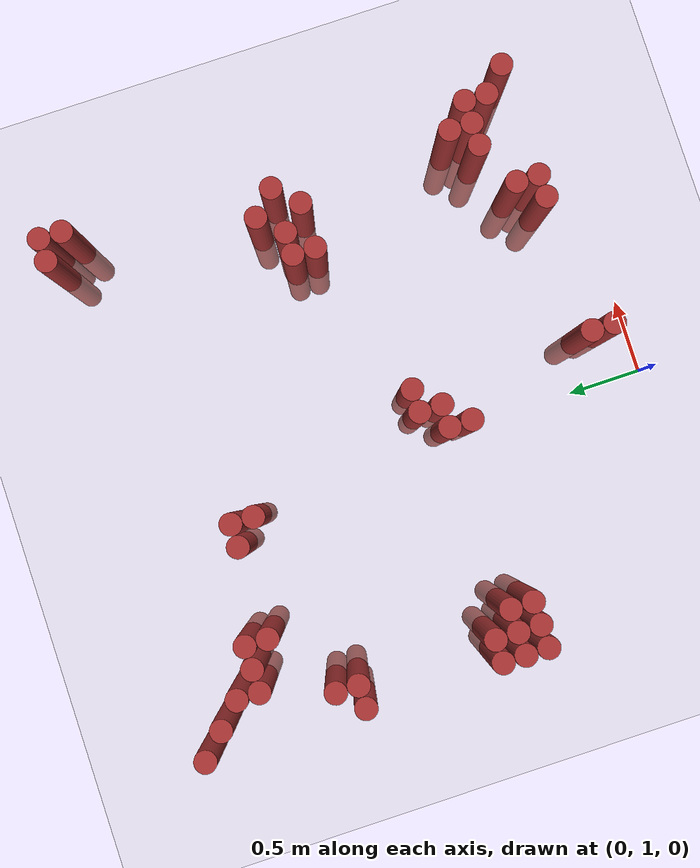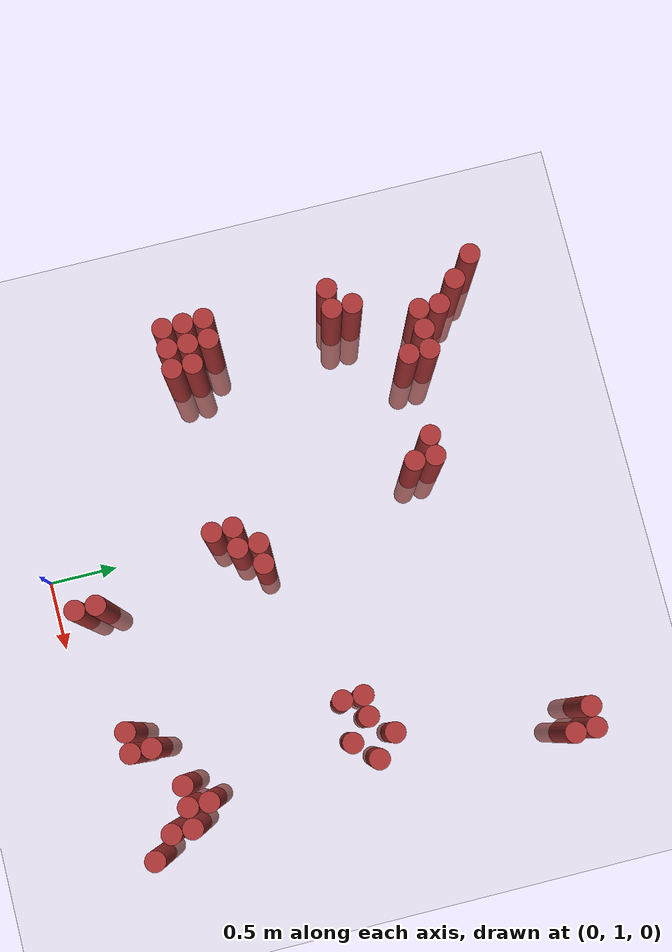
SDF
<sdf version="1.6">
 <world name="default">
  <model name="ground_plane">
   <static>1</static>
   <link name="link">
    <collision name="collision">
     <geometry><plane><normal>0 0 1</normal><size>100 100</size></plane></geometry>
     <surface><friction><ode><mu>100</mu><mu2>50</mu2></ode></friction></surface>
    </collision>
    <visual name="visual">
     <cast_shadows>0</cast_shadows>
     <geometry><plane><normal>0 0 1</normal><size>100 100</size></plane></geometry>
     <material>
      <script><uri>file://media/materials/scripts/gazebo.material</uri><name>Gazebo/Grey</name></script>
     </material>
    </visual>
   </link>
  </model>
  <model name="unit_cylinder_159">
   <static>1</static>
   <pose>-1.475000 2.275000 0.000000 0.000000 0.000000 0.000000</pose>
   <link name="link">
    <inertial>
     <mass>1</mass>
     <inertia><ixx>0.145833</ixx><ixy>0</ixy><ixz>0</ixz><iyy>0.145833</iyy><iyz>0</iyz><izz>0.125</izz></inertia>
    </inertial>
    <collision name="collision">
     <geometry><cylinder><radius>0.075000</radius><length>1.5</length></cylinder></geometry>
    </collision>
    <visual name="visual">
     <geometry><cylinder><radius>0.075000</radius><length>1.5</length></cylinder></geometry>
     <material>
      <ambient>0.648000 0.192000 0.192000 1</ambient>
      <diffuse>0.648000 0.192000 0.192000 1</diffuse>
     </material>
     <material>
      <script><name>Gazebo/Grey</name><uri>file://media/materials/scripts/gazebo.material</uri></script>
     </material>
    </visual>
   </link>
  </model>
  <model name="unit_cylinder_160">
   <static>1</static>
   <pose>-1.475000 2.425000 0.000000 0.000000 0.000000 0.000000</pose>
   <link name="link">
    <inertial>
     <mass>1</mass>
     <inertia><ixx>0.145833</ixx><ixy>0</ixy><ixz>0</ixz><iyy>0.145833</iyy><iyz>0</iyz><izz>0.125</izz></inertia>
    </inertial>
    <collision name="collision">
     <geometry><cylinder><radius>0.075000</radius><length>1.5</length></cylinder></geometry>
    </collision>
    <visual name="visual">
     <geometry><cylinder><radius>0.075000</radius><length>1.5</length></cylinder></geometry>
     <material>
      <ambient>0.648000 0.192000 0.192000 1</ambient>
      <diffuse>0.648000 0.192000 0.192000 1</diffuse>
     </material>
     <material>
      <script><name>Gazebo/Grey</name><uri>file://media/materials/scripts/gazebo.material</uri></script>
     </material>
    </visual>
   </link>
  </model>
  <model name="unit_cylinder_161">
   <static>1</static>
   <pose>-1.475000 2.575000 0.000000 0.000000 0.000000 0.000000</pose>
   <link name="link">
    <inertial>
     <mass>1</mass>
     <inertia><ixx>0.145833</ixx><ixy>0</ixy><ixz>0</ixz><iyy>0.145833</iyy><iyz>0</iyz><izz>0.125</izz></inertia>
    </inertial>
    <collision name="collision">
     <geometry><cylinder><radius>0.075000</radius><length>1.5</length></cylinder></geometry>
    </collision>
    <visual name="visual">
     <geometry><cylinder><radius>0.075000</radius><length>1.5</length></cylinder></geometry>
     <material>
      <ambient>0.648000 0.192000 0.192000 1</ambient>
      <diffuse>0.648000 0.192000 0.192000 1</diffuse>
     </material>
     <material>
      <script><name>Gazebo/Grey</name><uri>file://media/materials/scripts/gazebo.material</uri></script>
     </material>
    </visual>
   </link>
  </model>
  <model name="unit_cylinder_162">
   <static>1</static>
   <pose>-1.475000 3.475000 0.000000 0.000000 0.000000 0.000000</pose>
   <link name="link">
    <inertial>
     <mass>1</mass>
     <inertia><ixx>0.145833</ixx><ixy>0</ixy><ixz>0</ixz><iyy>0.145833</iyy><iyz>0</iyz><izz>0.125</izz></inertia>
    </inertial>
    <collision name="collision">
     <geometry><cylinder><radius>0.075000</radius><length>1.5</length></cylinder></geometry>
    </collision>
    <visual name="visual">
     <geometry><cylinder><radius>0.075000</radius><length>1.5</length></cylinder></geometry>
     <material>
      <ambient>0.648000 0.192000 0.192000 1</ambient>
      <diffuse>0.648000 0.192000 0.192000 1</diffuse>
     </material>
     <material>
      <script><name>Gazebo/Grey</name><uri>file://media/materials/scripts/gazebo.material</uri></script>
     </material>
    </visual>
   </link>
  </model>
  <model name="unit_cylinder_163">
   <static>1</static>
   <pose>-1.475000 4.525000 0.000000 0.000000 0.000000 0.000000</pose>
   <link name="link">
    <inertial>
     <mass>1</mass>
     <inertia><ixx>0.145833</ixx><ixy>0</ixy><ixz>0</ixz><iyy>0.145833</iyy><iyz>0</iyz><izz>0.125</izz></inertia>
    </inertial>
    <collision name="collision">
     <geometry><cylinder><radius>0.075000</radius><length>1.5</length></cylinder></geometry>
    </collision>
    <visual name="visual">
     <geometry><cylinder><radius>0.075000</radius><length>1.5</length></cylinder></geometry>
     <material>
      <ambient>0.648000 0.192000 0.192000 1</ambient>
      <diffuse>0.648000 0.192000 0.192000 1</diffuse>
     </material>
     <material>
      <script><name>Gazebo/Grey</name><uri>file://media/materials/scripts/gazebo.material</uri></script>
     </material>
    </visual>
   </link>
  </model>
  <model name="unit_cylinder_166">
   <static>1</static>
   <pose>-1.325000 2.275000 0.000000 0.000000 0.000000 0.000000</pose>
   <link name="link">
    <inertial>
     <mass>1</mass>
     <inertia><ixx>0.145833</ixx><ixy>0</ixy><ixz>0</ixz><iyy>0.145833</iyy><iyz>0</iyz><izz>0.125</izz></inertia>
    </inertial>
    <collision name="collision">
     <geometry><cylinder><radius>0.075000</radius><length>1.5</length></cylinder></geometry>
    </collision>
    <visual name="visual">
     <geometry><cylinder><radius>0.075000</radius><length>1.5</length></cylinder></geometry>
     <material>
      <ambient>0.648000 0.192000 0.192000 1</ambient>
      <diffuse>0.648000 0.192000 0.192000 1</diffuse>
     </material>
     <material>
      <script><name>Gazebo/Grey</name><uri>file://media/materials/scripts/gazebo.material</uri></script>
     </material>
    </visual>
   </link>
  </model>
  <model name="unit_cylinder_167">
   <static>1</static>
   <pose>-1.325000 2.425000 0.000000 0.000000 0.000000 0.000000</pose>
   <link name="link">
    <inertial>
     <mass>1</mass>
     <inertia><ixx>0.145833</ixx><ixy>0</ixy><ixz>0</ixz><iyy>0.145833</iyy><iyz>0</iyz><izz>0.125</izz></inertia>
    </inertial>
    <collision name="collision">
     <geometry><cylinder><radius>0.075000</radius><length>1.5</length></cylinder></geometry>
    </collision>
    <visual name="visual">
     <geometry><cylinder><radius>0.075000</radius><length>1.5</length></cylinder></geometry>
     <material>
      <ambient>0.648000 0.192000 0.192000 1</ambient>
      <diffuse>0.648000 0.192000 0.192000 1</diffuse>
     </material>
     <material>
      <script><name>Gazebo/Grey</name><uri>file://media/materials/scripts/gazebo.material</uri></script>
     </material>
    </visual>
   </link>
  </model>
  <model name="unit_cylinder_168">
   <static>1</static>
   <pose>-1.325000 2.575000 0.000000 0.000000 0.000000 0.000000</pose>
   <link name="link">
    <inertial>
     <mass>1</mass>
     <inertia><ixx>0.145833</ixx><ixy>0</ixy><ixz>0</ixz><iyy>0.145833</iyy><iyz>0</iyz><izz>0.125</izz></inertia>
    </inertial>
    <collision name="collision">
     <geometry><cylinder><radius>0.075000</radius><length>1.5</length></cylinder></geometry>
    </collision>
    <visual name="visual">
     <geometry><cylinder><radius>0.075000</radius><length>1.5</length></cylinder></geometry>
     <material>
      <ambient>0.648000 0.192000 0.192000 1</ambient>
      <diffuse>0.648000 0.192000 0.192000 1</diffuse>
     </material>
     <material>
      <script><name>Gazebo/Grey</name><uri>file://media/materials/scripts/gazebo.material</uri></script>
     </material>
    </visual>
   </link>
  </model>
  <model name="unit_cylinder_169">
   <static>1</static>
   <pose>-1.325000 3.475000 0.000000 0.000000 0.000000 0.000000</pose>
   <link name="link">
    <inertial>
     <mass>1</mass>
     <inertia><ixx>0.145833</ixx><ixy>0</ixy><ixz>0</ixz><iyy>0.145833</iyy><iyz>0</iyz><izz>0.125</izz></inertia>
    </inertial>
    <collision name="collision">
     <geometry><cylinder><radius>0.075000</radius><length>1.5</length></cylinder></geometry>
    </collision>
    <visual name="visual">
     <geometry><cylinder><radius>0.075000</radius><length>1.5</length></cylinder></geometry>
     <material>
      <ambient>0.648000 0.192000 0.192000 1</ambient>
      <diffuse>0.648000 0.192000 0.192000 1</diffuse>
     </material>
     <material>
      <script><name>Gazebo/Grey</name><uri>file://media/materials/scripts/gazebo.material</uri></script>
     </material>
    </visual>
   </link>
  </model>
  <model name="unit_cylinder_170">
   <static>1</static>
   <pose>-1.325000 3.625000 0.000000 0.000000 0.000000 0.000000</pose>
   <link name="link">
    <inertial>
     <mass>1</mass>
     <inertia><ixx>0.145833</ixx><ixy>0</ixy><ixz>0</ixz><iyy>0.145833</iyy><iyz>0</iyz><izz>0.125</izz></inertia>
    </inertial>
    <collision name="collision">
     <geometry><cylinder><radius>0.075000</radius><length>1.5</length></cylinder></geometry>
    </collision>
    <visual name="visual">
     <geometry><cylinder><radius>0.075000</radius><length>1.5</length></cylinder></geometry>
     <material>
      <ambient>0.648000 0.192000 0.192000 1</ambient>
      <diffuse>0.648000 0.192000 0.192000 1</diffuse>
     </material>
     <material>
      <script><name>Gazebo/Grey</name><uri>file://media/materials/scripts/gazebo.material</uri></script>
     </material>
    </visual>
   </link>
  </model>
  <model name="unit_cylinder_171">
   <static>1</static>
   <pose>-1.325000 4.375000 0.000000 0.000000 0.000000 0.000000</pose>
   <link name="link">
    <inertial>
     <mass>1</mass>
     <inertia><ixx>0.145833</ixx><ixy>0</ixy><ixz>0</ixz><iyy>0.145833</iyy><iyz>0</iyz><izz>0.125</izz></inertia>
    </inertial>
    <collision name="collision">
     <geometry><cylinder><radius>0.075000</radius><length>1.5</length></cylinder></geometry>
    </collision>
    <visual name="visual">
     <geometry><cylinder><radius>0.075000</radius><length>1.5</length></cylinder></geometry>
     <material>
      <ambient>0.648000 0.192000 0.192000 1</ambient>
      <diffuse>0.648000 0.192000 0.192000 1</diffuse>
     </material>
     <material>
      <script><name>Gazebo/Grey</name><uri>file://media/materials/scripts/gazebo.material</uri></script>
     </material>
    </visual>
   </link>
  </model>
  <model name="unit_cylinder_174">
   <static>1</static>
   <pose>-1.175000 2.275000 0.000000 0.000000 0.000000 0.000000</pose>
   <link name="link">
    <inertial>
     <mass>1</mass>
     <inertia><ixx>0.145833</ixx><ixy>0</ixy><ixz>0</ixz><iyy>0.145833</iyy><iyz>0</iyz><izz>0.125</izz></inertia>
    </inertial>
    <collision name="collision">
     <geometry><cylinder><radius>0.075000</radius><length>1.5</length></cylinder></geometry>
    </collision>
    <visual name="visual">
     <geometry><cylinder><radius>0.075000</radius><length>1.5</length></cylinder></geometry>
     <material>
      <ambient>0.648000 0.192000 0.192000 1</ambient>
      <diffuse>0.648000 0.192000 0.192000 1</diffuse>
     </material>
     <material>
      <script><name>Gazebo/Grey</name><uri>file://media/materials/scripts/gazebo.material</uri></script>
     </material>
    </visual>
   </link>
  </model>
  <model name="unit_cylinder_175">
   <static>1</static>
   <pose>-1.175000 2.425000 0.000000 0.000000 0.000000 0.000000</pose>
   <link name="link">
    <inertial>
     <mass>1</mass>
     <inertia><ixx>0.145833</ixx><ixy>0</ixy><ixz>0</ixz><iyy>0.145833</iyy><iyz>0</iyz><izz>0.125</izz></inertia>
    </inertial>
    <collision name="collision">
     <geometry><cylinder><radius>0.075000</radius><length>1.5</length></cylinder></geometry>
    </collision>
    <visual name="visual">
     <geometry><cylinder><radius>0.075000</radius><length>1.5</length></cylinder></geometry>
     <material>
      <ambient>0.648000 0.192000 0.192000 1</ambient>
      <diffuse>0.648000 0.192000 0.192000 1</diffuse>
     </material>
     <material>
      <script><name>Gazebo/Grey</name><uri>file://media/materials/scripts/gazebo.material</uri></script>
     </material>
    </visual>
   </link>
  </model>
  <model name="unit_cylinder_176">
   <static>1</static>
   <pose>-1.175000 4.075000 0.000000 0.000000 0.000000 0.000000</pose>
   <link name="link">
    <inertial>
     <mass>1</mass>
     <inertia><ixx>0.145833</ixx><ixy>0</ixy><ixz>0</ixz><iyy>0.145833</iyy><iyz>0</iyz><izz>0.125</izz></inertia>
    </inertial>
    <collision name="collision">
     <geometry><cylinder><radius>0.075000</radius><length>1.5</length></cylinder></geometry>
    </collision>
    <visual name="visual">
     <geometry><cylinder><radius>0.075000</radius><length>1.5</length></cylinder></geometry>
     <material>
      <ambient>0.648000 0.192000 0.192000 1</ambient>
      <diffuse>0.648000 0.192000 0.192000 1</diffuse>
     </material>
     <material>
      <script><name>Gazebo/Grey</name><uri>file://media/materials/scripts/gazebo.material</uri></script>
     </material>
    </visual>
   </link>
  </model>
  <model name="unit_cylinder_177">
   <static>1</static>
   <pose>-1.175000 4.225000 0.000000 0.000000 0.000000 0.000000</pose>
   <link name="link">
    <inertial>
     <mass>1</mass>
     <inertia><ixx>0.145833</ixx><ixy>0</ixy><ixz>0</ixz><iyy>0.145833</iyy><iyz>0</iyz><izz>0.125</izz></inertia>
    </inertial>
    <collision name="collision">
     <geometry><cylinder><radius>0.075000</radius><length>1.5</length></cylinder></geometry>
    </collision>
    <visual name="visual">
     <geometry><cylinder><radius>0.075000</radius><length>1.5</length></cylinder></geometry>
     <material>
      <ambient>0.648000 0.192000 0.192000 1</ambient>
      <diffuse>0.648000 0.192000 0.192000 1</diffuse>
     </material>
     <material>
      <script><name>Gazebo/Grey</name><uri>file://media/materials/scripts/gazebo.material</uri></script>
     </material>
    </visual>
   </link>
  </model>
  <model name="unit_cylinder_178">
   <static>1</static>
   <pose>-1.025000 4.075000 0.000000 0.000000 0.000000 0.000000</pose>
   <link name="link">
    <inertial>
     <mass>1</mass>
     <inertia><ixx>0.145833</ixx><ixy>0</ixy><ixz>0</ixz><iyy>0.145833</iyy><iyz>0</iyz><izz>0.125</izz></inertia>
    </inertial>
    <collision name="collision">
     <geometry><cylinder><radius>0.075000</radius><length>1.5</length></cylinder></geometry>
    </collision>
    <visual name="visual">
     <geometry><cylinder><radius>0.075000</radius><length>1.5</length></cylinder></geometry>
     <material>
      <ambient>0.648000 0.192000 0.192000 1</ambient>
      <diffuse>0.648000 0.192000 0.192000 1</diffuse>
     </material>
     <material>
      <script><name>Gazebo/Grey</name><uri>file://media/materials/scripts/gazebo.material</uri></script>
     </material>
    </visual>
   </link>
  </model>
  <model name="unit_cylinder_179">
   <static>1</static>
   <pose>-0.875000 3.925000 0.000000 0.000000 0.000000 0.000000</pose>
   <link name="link">
    <inertial>
     <mass>1</mass>
     <inertia><ixx>0.145833</ixx><ixy>0</ixy><ixz>0</ixz><iyy>0.145833</iyy><iyz>0</iyz><izz>0.125</izz></inertia>
    </inertial>
    <collision name="collision">
     <geometry><cylinder><radius>0.075000</radius><length>1.5</length></cylinder></geometry>
    </collision>
    <visual name="visual">
     <geometry><cylinder><radius>0.075000</radius><length>1.5</length></cylinder></geometry>
     <material>
      <ambient>0.648000 0.192000 0.192000 1</ambient>
      <diffuse>0.648000 0.192000 0.192000 1</diffuse>
     </material>
     <material>
      <script><name>Gazebo/Grey</name><uri>file://media/materials/scripts/gazebo.material</uri></script>
     </material>
    </visual>
   </link>
  </model>
  <model name="unit_cylinder_180">
   <static>1</static>
   <pose>-0.875000 4.075000 0.000000 0.000000 0.000000 0.000000</pose>
   <link name="link">
    <inertial>
     <mass>1</mass>
     <inertia><ixx>0.145833</ixx><ixy>0</ixy><ixz>0</ixz><iyy>0.145833</iyy><iyz>0</iyz><izz>0.125</izz></inertia>
    </inertial>
    <collision name="collision">
     <geometry><cylinder><radius>0.075000</radius><length>1.5</length></cylinder></geometry>
    </collision>
    <visual name="visual">
     <geometry><cylinder><radius>0.075000</radius><length>1.5</length></cylinder></geometry>
     <material>
      <ambient>0.648000 0.192000 0.192000 1</ambient>
      <diffuse>0.648000 0.192000 0.192000 1</diffuse>
     </material>
     <material>
      <script><name>Gazebo/Grey</name><uri>file://media/materials/scripts/gazebo.material</uri></script>
     </material>
    </visual>
   </link>
  </model>
  <model name="unit_cylinder_181">
   <static>1</static>
   <pose>-0.275000 3.925000 0.000000 0.000000 0.000000 0.000000</pose>
   <link name="link">
    <inertial>
     <mass>1</mass>
     <inertia><ixx>0.145833</ixx><ixy>0</ixy><ixz>0</ixz><iyy>0.145833</iyy><iyz>0</iyz><izz>0.125</izz></inertia>
    </inertial>
    <collision name="collision">
     <geometry><cylinder><radius>0.075000</radius><length>1.5</length></cylinder></geometry>
    </collision>
    <visual name="visual">
     <geometry><cylinder><radius>0.075000</radius><length>1.5</length></cylinder></geometry>
     <material>
      <ambient>0.648000 0.192000 0.192000 1</ambient>
      <diffuse>0.648000 0.192000 0.192000 1</diffuse>
     </material>
     <material>
      <script><name>Gazebo/Grey</name><uri>file://media/materials/scripts/gazebo.material</uri></script>
     </material>
    </visual>
   </link>
  </model>
  <model name="unit_cylinder_182">
   <static>1</static>
   <pose>-0.125000 3.775000 0.000000 0.000000 0.000000 0.000000</pose>
   <link name="link">
    <inertial>
     <mass>1</mass>
     <inertia><ixx>0.145833</ixx><ixy>0</ixy><ixz>0</ixz><iyy>0.145833</iyy><iyz>0</iyz><izz>0.125</izz></inertia>
    </inertial>
    <collision name="collision">
     <geometry><cylinder><radius>0.075000</radius><length>1.5</length></cylinder></geometry>
    </collision>
    <visual name="visual">
     <geometry><cylinder><radius>0.075000</radius><length>1.5</length></cylinder></geometry>
     <material>
      <ambient>0.648000 0.192000 0.192000 1</ambient>
      <diffuse>0.648000 0.192000 0.192000 1</diffuse>
     </material>
     <material>
      <script><name>Gazebo/Grey</name><uri>file://media/materials/scripts/gazebo.material</uri></script>
     </material>
    </visual>
   </link>
  </model>
  <model name="unit_cylinder_183">
   <static>1</static>
   <pose>-0.125000 3.925000 0.000000 0.000000 0.000000 0.000000</pose>
   <link name="link">
    <inertial>
     <mass>1</mass>
     <inertia><ixx>0.145833</ixx><ixy>0</ixy><ixz>0</ixz><iyy>0.145833</iyy><iyz>0</iyz><izz>0.125</izz></inertia>
    </inertial>
    <collision name="collision">
     <geometry><cylinder><radius>0.075000</radius><length>1.5</length></cylinder></geometry>
    </collision>
    <visual name="visual">
     <geometry><cylinder><radius>0.075000</radius><length>1.5</length></cylinder></geometry>
     <material>
      <ambient>0.648000 0.192000 0.192000 1</ambient>
      <diffuse>0.648000 0.192000 0.192000 1</diffuse>
     </material>
     <material>
      <script><name>Gazebo/Grey</name><uri>file://media/materials/scripts/gazebo.material</uri></script>
     </material>
    </visual>
   </link>
  </model>
  <model name="unit_cylinder_185">
   <static>1</static>
   <pose>0.025000 2.275000 0.000000 0.000000 0.000000 0.000000</pose>
   <link name="link">
    <inertial>
     <mass>1</mass>
     <inertia><ixx>0.145833</ixx><ixy>0</ixy><ixz>0</ixz><iyy>0.145833</iyy><iyz>0</iyz><izz>0.125</izz></inertia>
    </inertial>
    <collision name="collision">
     <geometry><cylinder><radius>0.075000</radius><length>1.5</length></cylinder></geometry>
    </collision>
    <visual name="visual">
     <geometry><cylinder><radius>0.075000</radius><length>1.5</length></cylinder></geometry>
     <material>
      <ambient>0.648000 0.192000 0.192000 1</ambient>
      <diffuse>0.648000 0.192000 0.192000 1</diffuse>
     </material>
     <material>
      <script><name>Gazebo/Grey</name><uri>file://media/materials/scripts/gazebo.material</uri></script>
     </material>
    </visual>
   </link>
  </model>
  <model name="unit_cylinder_186">
   <static>1</static>
   <pose>0.025000 2.425000 0.000000 0.000000 0.000000 0.000000</pose>
   <link name="link">
    <inertial>
     <mass>1</mass>
     <inertia><ixx>0.145833</ixx><ixy>0</ixy><ixz>0</ixz><iyy>0.145833</iyy><iyz>0</iyz><izz>0.125</izz></inertia>
    </inertial>
    <collision name="collision">
     <geometry><cylinder><radius>0.075000</radius><length>1.5</length></cylinder></geometry>
    </collision>
    <visual name="visual">
     <geometry><cylinder><radius>0.075000</radius><length>1.5</length></cylinder></geometry>
     <material>
      <ambient>0.648000 0.192000 0.192000 1</ambient>
      <diffuse>0.648000 0.192000 0.192000 1</diffuse>
     </material>
     <material>
      <script><name>Gazebo/Grey</name><uri>file://media/materials/scripts/gazebo.material</uri></script>
     </material>
    </visual>
   </link>
  </model>
  <model name="unit_cylinder_190">
   <static>1</static>
   <pose>0.175000 2.425000 0.000000 0.000000 0.000000 0.000000</pose>
   <link name="link">
    <inertial>
     <mass>1</mass>
     <inertia><ixx>0.145833</ixx><ixy>0</ixy><ixz>0</ixz><iyy>0.145833</iyy><iyz>0</iyz><izz>0.125</izz></inertia>
    </inertial>
    <collision name="collision">
     <geometry><cylinder><radius>0.075000</radius><length>1.5</length></cylinder></geometry>
    </collision>
    <visual name="visual">
     <geometry><cylinder><radius>0.075000</radius><length>1.5</length></cylinder></geometry>
     <material>
      <ambient>0.648000 0.192000 0.192000 1</ambient>
      <diffuse>0.648000 0.192000 0.192000 1</diffuse>
     </material>
     <material>
      <script><name>Gazebo/Grey</name><uri>file://media/materials/scripts/gazebo.material</uri></script>
     </material>
    </visual>
   </link>
  </model>
  <model name="unit_cylinder_191">
   <static>1</static>
   <pose>0.175000 2.575000 0.000000 0.000000 0.000000 0.000000</pose>
   <link name="link">
    <inertial>
     <mass>1</mass>
     <inertia><ixx>0.145833</ixx><ixy>0</ixy><ixz>0</ixz><iyy>0.145833</iyy><iyz>0</iyz><izz>0.125</izz></inertia>
    </inertial>
    <collision name="collision">
     <geometry><cylinder><radius>0.075000</radius><length>1.5</length></cylinder></geometry>
    </collision>
    <visual name="visual">
     <geometry><cylinder><radius>0.075000</radius><length>1.5</length></cylinder></geometry>
     <material>
      <ambient>0.648000 0.192000 0.192000 1</ambient>
      <diffuse>0.648000 0.192000 0.192000 1</diffuse>
     </material>
     <material>
      <script><name>Gazebo/Grey</name><uri>file://media/materials/scripts/gazebo.material</uri></script>
     </material>
    </visual>
   </link>
  </model>
  <model name="unit_cylinder_194">
   <static>1</static>
   <pose>0.325000 1.225000 0.000000 0.000000 0.000000 0.000000</pose>
   <link name="link">
    <inertial>
     <mass>1</mass>
     <inertia><ixx>0.145833</ixx><ixy>0</ixy><ixz>0</ixz><iyy>0.145833</iyy><iyz>0</iyz><izz>0.125</izz></inertia>
    </inertial>
    <collision name="collision">
     <geometry><cylinder><radius>0.075000</radius><length>1.5</length></cylinder></geometry>
    </collision>
    <visual name="visual">
     <geometry><cylinder><radius>0.075000</radius><length>1.5</length></cylinder></geometry>
     <material>
      <ambient>0.648000 0.192000 0.192000 1</ambient>
      <diffuse>0.648000 0.192000 0.192000 1</diffuse>
     </material>
     <material>
      <script><name>Gazebo/Grey</name><uri>file://media/materials/scripts/gazebo.material</uri></script>
     </material>
    </visual>
   </link>
  </model>
  <model name="unit_cylinder_195">
   <static>1</static>
   <pose>0.325000 1.375000 0.000000 0.000000 0.000000 0.000000</pose>
   <link name="link">
    <inertial>
     <mass>1</mass>
     <inertia><ixx>0.145833</ixx><ixy>0</ixy><ixz>0</ixz><iyy>0.145833</iyy><iyz>0</iyz><izz>0.125</izz></inertia>
    </inertial>
    <collision name="collision">
     <geometry><cylinder><radius>0.075000</radius><length>1.5</length></cylinder></geometry>
    </collision>
    <visual name="visual">
     <geometry><cylinder><radius>0.075000</radius><length>1.5</length></cylinder></geometry>
     <material>
      <ambient>0.648000 0.192000 0.192000 1</ambient>
      <diffuse>0.648000 0.192000 0.192000 1</diffuse>
     </material>
     <material>
      <script><name>Gazebo/Grey</name><uri>file://media/materials/scripts/gazebo.material</uri></script>
     </material>
    </visual>
   </link>
  </model>
  <model name="unit_cylinder_196">
   <static>1</static>
   <pose>0.325000 2.575000 0.000000 0.000000 0.000000 0.000000</pose>
   <link name="link">
    <inertial>
     <mass>1</mass>
     <inertia><ixx>0.145833</ixx><ixy>0</ixy><ixz>0</ixz><iyy>0.145833</iyy><iyz>0</iyz><izz>0.125</izz></inertia>
    </inertial>
    <collision name="collision">
     <geometry><cylinder><radius>0.075000</radius><length>1.5</length></cylinder></geometry>
    </collision>
    <visual name="visual">
     <geometry><cylinder><radius>0.075000</radius><length>1.5</length></cylinder></geometry>
     <material>
      <ambient>0.648000 0.192000 0.192000 1</ambient>
      <diffuse>0.648000 0.192000 0.192000 1</diffuse>
     </material>
     <material>
      <script><name>Gazebo/Grey</name><uri>file://media/materials/scripts/gazebo.material</uri></script>
     </material>
    </visual>
   </link>
  </model>
  <model name="unit_cylinder_203">
   <static>1</static>
   <pose>1.225000 1.375000 0.000000 0.000000 0.000000 0.000000</pose>
   <link name="link">
    <inertial>
     <mass>1</mass>
     <inertia><ixx>0.145833</ixx><ixy>0</ixy><ixz>0</ixz><iyy>0.145833</iyy><iyz>0</iyz><izz>0.125</izz></inertia>
    </inertial>
    <collision name="collision">
     <geometry><cylinder><radius>0.075000</radius><length>1.5</length></cylinder></geometry>
    </collision>
    <visual name="visual">
     <geometry><cylinder><radius>0.075000</radius><length>1.5</length></cylinder></geometry>
     <material>
      <ambient>0.648000 0.192000 0.192000 1</ambient>
      <diffuse>0.648000 0.192000 0.192000 1</diffuse>
     </material>
     <material>
      <script><name>Gazebo/Grey</name><uri>file://media/materials/scripts/gazebo.material</uri></script>
     </material>
    </visual>
   </link>
  </model>
  <model name="unit_cylinder_204">
   <static>1</static>
   <pose>1.375000 1.375000 0.000000 0.000000 0.000000 0.000000</pose>
   <link name="link">
    <inertial>
     <mass>1</mass>
     <inertia><ixx>0.145833</ixx><ixy>0</ixy><ixz>0</ixz><iyy>0.145833</iyy><iyz>0</iyz><izz>0.125</izz></inertia>
    </inertial>
    <collision name="collision">
     <geometry><cylinder><radius>0.075000</radius><length>1.5</length></cylinder></geometry>
    </collision>
    <visual name="visual">
     <geometry><cylinder><radius>0.075000</radius><length>1.5</length></cylinder></geometry>
     <material>
      <ambient>0.648000 0.192000 0.192000 1</ambient>
      <diffuse>0.648000 0.192000 0.192000 1</diffuse>
     </material>
     <material>
      <script><name>Gazebo/Grey</name><uri>file://media/materials/scripts/gazebo.material</uri></script>
     </material>
    </visual>
   </link>
  </model>
  <model name="unit_cylinder_205">
   <static>1</static>
   <pose>1.375000 1.525000 0.000000 0.000000 0.000000 0.000000</pose>
   <link name="link">
    <inertial>
     <mass>1</mass>
     <inertia><ixx>0.145833</ixx><ixy>0</ixy><ixz>0</ixz><iyy>0.145833</iyy><iyz>0</iyz><izz>0.125</izz></inertia>
    </inertial>
    <collision name="collision">
     <geometry><cylinder><radius>0.075000</radius><length>1.5</length></cylinder></geometry>
    </collision>
    <visual name="visual">
     <geometry><cylinder><radius>0.075000</radius><length>1.5</length></cylinder></geometry>
     <material>
      <ambient>0.648000 0.192000 0.192000 1</ambient>
      <diffuse>0.648000 0.192000 0.192000 1</diffuse>
     </material>
     <material>
      <script><name>Gazebo/Grey</name><uri>file://media/materials/scripts/gazebo.material</uri></script>
     </material>
    </visual>
   </link>
  </model>
  <model name="unit_cylinder_206">
   <static>1</static>
   <pose>1.375000 2.875000 0.000000 0.000000 0.000000 0.000000</pose>
   <link name="link">
    <inertial>
     <mass>1</mass>
     <inertia><ixx>0.145833</ixx><ixy>0</ixy><ixz>0</ixz><iyy>0.145833</iyy><iyz>0</iyz><izz>0.125</izz></inertia>
    </inertial>
    <collision name="collision">
     <geometry><cylinder><radius>0.075000</radius><length>1.5</length></cylinder></geometry>
    </collision>
    <visual name="visual">
     <geometry><cylinder><radius>0.075000</radius><length>1.5</length></cylinder></geometry>
     <material>
      <ambient>0.648000 0.192000 0.192000 1</ambient>
      <diffuse>0.648000 0.192000 0.192000 1</diffuse>
     </material>
     <material>
      <script><name>Gazebo/Grey</name><uri>file://media/materials/scripts/gazebo.material</uri></script>
     </material>
    </visual>
   </link>
  </model>
  <model name="unit_cylinder_207">
   <static>1</static>
   <pose>1.375000 3.025000 0.000000 0.000000 0.000000 0.000000</pose>
   <link name="link">
    <inertial>
     <mass>1</mass>
     <inertia><ixx>0.145833</ixx><ixy>0</ixy><ixz>0</ixz><iyy>0.145833</iyy><iyz>0</iyz><izz>0.125</izz></inertia>
    </inertial>
    <collision name="collision">
     <geometry><cylinder><radius>0.075000</radius><length>1.5</length></cylinder></geometry>
    </collision>
    <visual name="visual">
     <geometry><cylinder><radius>0.075000</radius><length>1.5</length></cylinder></geometry>
     <material>
      <ambient>0.648000 0.192000 0.192000 1</ambient>
      <diffuse>0.648000 0.192000 0.192000 1</diffuse>
     </material>
     <material>
      <script><name>Gazebo/Grey</name><uri>file://media/materials/scripts/gazebo.material</uri></script>
     </material>
    </visual>
   </link>
  </model>
  <model name="unit_cylinder_208">
   <static>1</static>
   <pose>1.525000 3.025000 0.000000 0.000000 0.000000 0.000000</pose>
   <link name="link">
    <inertial>
     <mass>1</mass>
     <inertia><ixx>0.145833</ixx><ixy>0</ixy><ixz>0</ixz><iyy>0.145833</iyy><iyz>0</iyz><izz>0.125</izz></inertia>
    </inertial>
    <collision name="collision">
     <geometry><cylinder><radius>0.075000</radius><length>1.5</length></cylinder></geometry>
    </collision>
    <visual name="visual">
     <geometry><cylinder><radius>0.075000</radius><length>1.5</length></cylinder></geometry>
     <material>
      <ambient>0.648000 0.192000 0.192000 1</ambient>
      <diffuse>0.648000 0.192000 0.192000 1</diffuse>
     </material>
     <material>
      <script><name>Gazebo/Grey</name><uri>file://media/materials/scripts/gazebo.material</uri></script>
     </material>
    </visual>
   </link>
  </model>
  <model name="unit_cylinder_209">
   <static>1</static>
   <pose>1.675000 1.675000 0.000000 0.000000 0.000000 0.000000</pose>
   <link name="link">
    <inertial>
     <mass>1</mass>
     <inertia><ixx>0.145833</ixx><ixy>0</ixy><ixz>0</ixz><iyy>0.145833</iyy><iyz>0</iyz><izz>0.125</izz></inertia>
    </inertial>
    <collision name="collision">
     <geometry><cylinder><radius>0.075000</radius><length>1.5</length></cylinder></geometry>
    </collision>
    <visual name="visual">
     <geometry><cylinder><radius>0.075000</radius><length>1.5</length></cylinder></geometry>
     <material>
      <ambient>0.648000 0.192000 0.192000 1</ambient>
      <diffuse>0.648000 0.192000 0.192000 1</diffuse>
     </material>
     <material>
      <script><name>Gazebo/Grey</name><uri>file://media/materials/scripts/gazebo.material</uri></script>
     </material>
    </visual>
   </link>
  </model>
  <model name="unit_cylinder_210">
   <static>1</static>
   <pose>1.675000 2.875000 0.000000 0.000000 0.000000 0.000000</pose>
   <link name="link">
    <inertial>
     <mass>1</mass>
     <inertia><ixx>0.145833</ixx><ixy>0</ixy><ixz>0</ixz><iyy>0.145833</iyy><iyz>0</iyz><izz>0.125</izz></inertia>
    </inertial>
    <collision name="collision">
     <geometry><cylinder><radius>0.075000</radius><length>1.5</length></cylinder></geometry>
    </collision>
    <visual name="visual">
     <geometry><cylinder><radius>0.075000</radius><length>1.5</length></cylinder></geometry>
     <material>
      <ambient>0.648000 0.192000 0.192000 1</ambient>
      <diffuse>0.648000 0.192000 0.192000 1</diffuse>
     </material>
     <material>
      <script><name>Gazebo/Grey</name><uri>file://media/materials/scripts/gazebo.material</uri></script>
     </material>
    </visual>
   </link>
  </model>
  <model name="unit_cylinder_211">
   <static>1</static>
   <pose>1.675000 3.175000 0.000000 0.000000 0.000000 0.000000</pose>
   <link name="link">
    <inertial>
     <mass>1</mass>
     <inertia><ixx>0.145833</ixx><ixy>0</ixy><ixz>0</ixz><iyy>0.145833</iyy><iyz>0</iyz><izz>0.125</izz></inertia>
    </inertial>
    <collision name="collision">
     <geometry><cylinder><radius>0.075000</radius><length>1.5</length></cylinder></geometry>
    </collision>
    <visual name="visual">
     <geometry><cylinder><radius>0.075000</radius><length>1.5</length></cylinder></geometry>
     <material>
      <ambient>0.648000 0.192000 0.192000 1</ambient>
      <diffuse>0.648000 0.192000 0.192000 1</diffuse>
     </material>
     <material>
      <script><name>Gazebo/Grey</name><uri>file://media/materials/scripts/gazebo.material</uri></script>
     </material>
    </visual>
   </link>
  </model>
  <model name="unit_cylinder_212">
   <static>1</static>
   <pose>1.825000 1.675000 0.000000 0.000000 0.000000 0.000000</pose>
   <link name="link">
    <inertial>
     <mass>1</mass>
     <inertia><ixx>0.145833</ixx><ixy>0</ixy><ixz>0</ixz><iyy>0.145833</iyy><iyz>0</iyz><izz>0.125</izz></inertia>
    </inertial>
    <collision name="collision">
     <geometry><cylinder><radius>0.075000</radius><length>1.5</length></cylinder></geometry>
    </collision>
    <visual name="visual">
     <geometry><cylinder><radius>0.075000</radius><length>1.5</length></cylinder></geometry>
     <material>
      <ambient>0.648000 0.192000 0.192000 1</ambient>
      <diffuse>0.648000 0.192000 0.192000 1</diffuse>
     </material>
     <material>
      <script><name>Gazebo/Grey</name><uri>file://media/materials/scripts/gazebo.material</uri></script>
     </material>
    </visual>
   </link>
  </model>
  <model name="unit_cylinder_213">
   <static>1</static>
   <pose>1.825000 1.825000 0.000000 0.000000 0.000000 0.000000</pose>
   <link name="link">
    <inertial>
     <mass>1</mass>
     <inertia><ixx>0.145833</ixx><ixy>0</ixy><ixz>0</ixz><iyy>0.145833</iyy><iyz>0</iyz><izz>0.125</izz></inertia>
    </inertial>
    <collision name="collision">
     <geometry><cylinder><radius>0.075000</radius><length>1.5</length></cylinder></geometry>
    </collision>
    <visual name="visual">
     <geometry><cylinder><radius>0.075000</radius><length>1.5</length></cylinder></geometry>
     <material>
      <ambient>0.648000 0.192000 0.192000 1</ambient>
      <diffuse>0.648000 0.192000 0.192000 1</diffuse>
     </material>
     <material>
      <script><name>Gazebo/Grey</name><uri>file://media/materials/scripts/gazebo.material</uri></script>
     </material>
    </visual>
   </link>
  </model>
  <model name="unit_cylinder_214">
   <static>1</static>
   <pose>1.825000 3.025000 0.000000 0.000000 0.000000 0.000000</pose>
   <link name="link">
    <inertial>
     <mass>1</mass>
     <inertia><ixx>0.145833</ixx><ixy>0</ixy><ixz>0</ixz><iyy>0.145833</iyy><iyz>0</iyz><izz>0.125</izz></inertia>
    </inertial>
    <collision name="collision">
     <geometry><cylinder><radius>0.075000</radius><length>1.5</length></cylinder></geometry>
    </collision>
    <visual name="visual">
     <geometry><cylinder><radius>0.075000</radius><length>1.5</length></cylinder></geometry>
     <material>
      <ambient>0.648000 0.192000 0.192000 1</ambient>
      <diffuse>0.648000 0.192000 0.192000 1</diffuse>
     </material>
     <material>
      <script><name>Gazebo/Grey</name><uri>file://media/materials/scripts/gazebo.material</uri></script>
     </material>
    </visual>
   </link>
  </model>
  <model name="unit_cylinder_215">
   <static>1</static>
   <pose>1.825000 4.525000 0.000000 0.000000 0.000000 0.000000</pose>
   <link name="link">
    <inertial>
     <mass>1</mass>
     <inertia><ixx>0.145833</ixx><ixy>0</ixy><ixz>0</ixz><iyy>0.145833</iyy><iyz>0</iyz><izz>0.125</izz></inertia>
    </inertial>
    <collision name="collision">
     <geometry><cylinder><radius>0.075000</radius><length>1.5</length></cylinder></geometry>
    </collision>
    <visual name="visual">
     <geometry><cylinder><radius>0.075000</radius><length>1.5</length></cylinder></geometry>
     <material>
      <ambient>0.648000 0.192000 0.192000 1</ambient>
      <diffuse>0.648000 0.192000 0.192000 1</diffuse>
     </material>
     <material>
      <script><name>Gazebo/Grey</name><uri>file://media/materials/scripts/gazebo.material</uri></script>
     </material>
    </visual>
   </link>
  </model>
  <model name="unit_cylinder_216">
   <static>1</static>
   <pose>1.975000 1.525000 0.000000 0.000000 0.000000 0.000000</pose>
   <link name="link">
    <inertial>
     <mass>1</mass>
     <inertia><ixx>0.145833</ixx><ixy>0</ixy><ixz>0</ixz><iyy>0.145833</iyy><iyz>0</iyz><izz>0.125</izz></inertia>
    </inertial>
    <collision name="collision">
     <geometry><cylinder><radius>0.075000</radius><length>1.5</length></cylinder></geometry>
    </collision>
    <visual name="visual">
     <geometry><cylinder><radius>0.075000</radius><length>1.5</length></cylinder></geometry>
     <material>
      <ambient>0.648000 0.192000 0.192000 1</ambient>
      <diffuse>0.648000 0.192000 0.192000 1</diffuse>
     </material>
     <material>
      <script><name>Gazebo/Grey</name><uri>file://media/materials/scripts/gazebo.material</uri></script>
     </material>
    </visual>
   </link>
  </model>
  <model name="unit_cylinder_217">
   <static>1</static>
   <pose>1.975000 1.675000 0.000000 0.000000 0.000000 0.000000</pose>
   <link name="link">
    <inertial>
     <mass>1</mass>
     <inertia><ixx>0.145833</ixx><ixy>0</ixy><ixz>0</ixz><iyy>0.145833</iyy><iyz>0</iyz><izz>0.125</izz></inertia>
    </inertial>
    <collision name="collision">
     <geometry><cylinder><radius>0.075000</radius><length>1.5</length></cylinder></geometry>
    </collision>
    <visual name="visual">
     <geometry><cylinder><radius>0.075000</radius><length>1.5</length></cylinder></geometry>
     <material>
      <ambient>0.648000 0.192000 0.192000 1</ambient>
      <diffuse>0.648000 0.192000 0.192000 1</diffuse>
     </material>
     <material>
      <script><name>Gazebo/Grey</name><uri>file://media/materials/scripts/gazebo.material</uri></script>
     </material>
    </visual>
   </link>
  </model>
  <model name="unit_cylinder_218">
   <static>1</static>
   <pose>1.975000 4.375000 0.000000 0.000000 0.000000 0.000000</pose>
   <link name="link">
    <inertial>
     <mass>1</mass>
     <inertia><ixx>0.145833</ixx><ixy>0</ixy><ixz>0</ixz><iyy>0.145833</iyy><iyz>0</iyz><izz>0.125</izz></inertia>
    </inertial>
    <collision name="collision">
     <geometry><cylinder><radius>0.075000</radius><length>1.5</length></cylinder></geometry>
    </collision>
    <visual name="visual">
     <geometry><cylinder><radius>0.075000</radius><length>1.5</length></cylinder></geometry>
     <material>
      <ambient>0.648000 0.192000 0.192000 1</ambient>
      <diffuse>0.648000 0.192000 0.192000 1</diffuse>
     </material>
     <material>
      <script><name>Gazebo/Grey</name><uri>file://media/materials/scripts/gazebo.material</uri></script>
     </material>
    </visual>
   </link>
  </model>
  <model name="unit_cylinder_219">
   <static>1</static>
   <pose>1.975000 4.525000 0.000000 0.000000 0.000000 0.000000</pose>
   <link name="link">
    <inertial>
     <mass>1</mass>
     <inertia><ixx>0.145833</ixx><ixy>0</ixy><ixz>0</ixz><iyy>0.145833</iyy><iyz>0</iyz><izz>0.125</izz></inertia>
    </inertial>
    <collision name="collision">
     <geometry><cylinder><radius>0.075000</radius><length>1.5</length></cylinder></geometry>
    </collision>
    <visual name="visual">
     <geometry><cylinder><radius>0.075000</radius><length>1.5</length></cylinder></geometry>
     <material>
      <ambient>0.648000 0.192000 0.192000 1</ambient>
      <diffuse>0.648000 0.192000 0.192000 1</diffuse>
     </material>
     <material>
      <script><name>Gazebo/Grey</name><uri>file://media/materials/scripts/gazebo.material</uri></script>
     </material>
    </visual>
   </link>
  </model>
  <model name="unit_cylinder_221">
   <static>1</static>
   <pose>2.125000 1.375000 0.000000 0.000000 0.000000 0.000000</pose>
   <link name="link">
    <inertial>
     <mass>1</mass>
     <inertia><ixx>0.145833</ixx><ixy>0</ixy><ixz>0</ixz><iyy>0.145833</iyy><iyz>0</iyz><izz>0.125</izz></inertia>
    </inertial>
    <collision name="collision">
     <geometry><cylinder><radius>0.075000</radius><length>1.5</length></cylinder></geometry>
    </collision>
    <visual name="visual">
     <geometry><cylinder><radius>0.075000</radius><length>1.5</length></cylinder></geometry>
     <material>
      <ambient>0.648000 0.192000 0.192000 1</ambient>
      <diffuse>0.648000 0.192000 0.192000 1</diffuse>
     </material>
     <material>
      <script><name>Gazebo/Grey</name><uri>file://media/materials/scripts/gazebo.material</uri></script>
     </material>
    </visual>
   </link>
  </model>
 </world>
</sdf>
